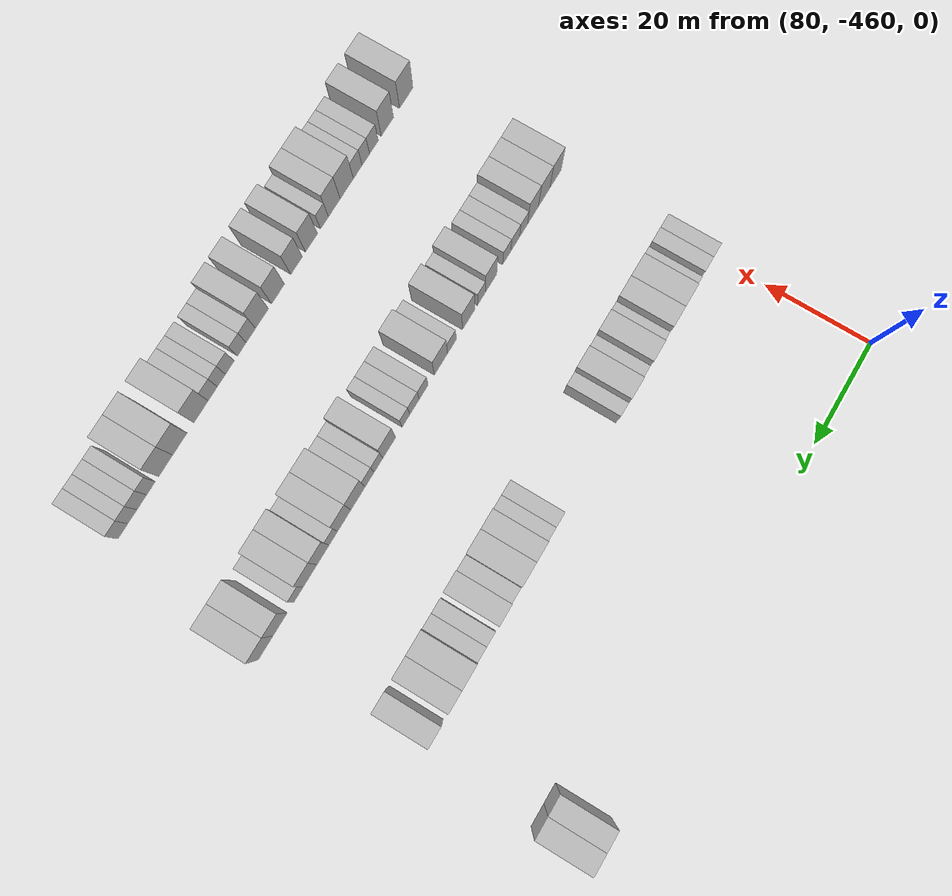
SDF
<sdf version="1.6">
 <world name="default">
  <model name="building_486">
   <static>1</static>
   <pose>85.0000 -369.9869 0 0.000000 0.000000 0.000000</pose>
   <link name="link">
    <pose>0 0 4.50 0 0 0</pose>
    <collision name="collision"><geometry><box><size>10.0000 3.6420 9.0000</size></box></geometry></collision>
    <visual name="visual">
     <cast_shadows>0</cast_shadows>
     <geometry><box><size>10.0000 3.6420 9.0000</size></box></geometry>
     <material>
      <script>
       <uri>model://HANNAS_wall/materials/scripts</uri>
       <uri>model://HANNAS_wall/materials/textures</uri>
       <name>vrc/HANNAS_wall</name>
      </script>
     </material>
    </visual>
   </link>
  </model>
  <model name="building_487">
   <static>1</static>
   <pose>85.0000 -366.1948 0 0.000000 0.000000 0.000000</pose>
   <link name="link">
    <pose>0 0 4.50 0 0 0</pose>
    <collision name="collision"><geometry><box><size>10.0000 3.9422 9.0000</size></box></geometry></collision>
    <visual name="visual">
     <cast_shadows>0</cast_shadows>
     <geometry><box><size>10.0000 3.9422 9.0000</size></box></geometry>
     <material>
      <script>
       <uri>model://HANNAS_wall/materials/scripts</uri>
       <uri>model://HANNAS_wall/materials/textures</uri>
       <name>vrc/HANNAS_wall</name>
      </script>
     </material>
    </visual>
   </link>
  </model>
  <model name="building_695">
   <static>1</static>
   <pose>115.0000 -458.6455 0 0.000000 0.000000 0.000000</pose>
   <link name="link">
    <pose>0 0 3.00 0 0 0</pose>
    <collision name="collision"><geometry><box><size>10.0000 2.7090 6.0000</size></box></geometry></collision>
    <visual name="visual">
     <cast_shadows>0</cast_shadows>
     <geometry><box><size>10.0000 2.7090 6.0000</size></box></geometry>
     <material>
      <script>
       <uri>model://HANNAS_wall/materials/scripts</uri>
       <uri>model://HANNAS_wall/materials/textures</uri>
       <name>vrc/HANNAS_wall</name>
      </script>
     </material>
    </visual>
   </link>
  </model>
  <model name="building_696">
   <static>1</static>
   <pose>115.0000 -455.8440 0 0.000000 0.000000 0.000000</pose>
   <link name="link">
    <pose>0 0 3.00 0 0 0</pose>
    <collision name="collision"><geometry><box><size>10.0000 2.8940 6.0000</size></box></geometry></collision>
    <visual name="visual">
     <cast_shadows>0</cast_shadows>
     <geometry><box><size>10.0000 2.8940 6.0000</size></box></geometry>
     <material>
      <script>
       <uri>model://HANNAS_wall/materials/scripts</uri>
       <uri>model://HANNAS_wall/materials/textures</uri>
       <name>vrc/HANNAS_wall</name>
      </script>
     </material>
    </visual>
   </link>
  </model>
  <model name="building_697">
   <static>1</static>
   <pose>115.0000 -452.1344 0 0.000000 0.000000 0.000000</pose>
   <link name="link">
    <pose>0 0 3.00 0 0 0</pose>
    <collision name="collision"><geometry><box><size>10.0000 2.5251 6.0000</size></box></geometry></collision>
    <visual name="visual">
     <cast_shadows>0</cast_shadows>
     <geometry><box><size>10.0000 2.5251 6.0000</size></box></geometry>
     <material>
      <script>
       <uri>model://HANNAS_wall/materials/scripts</uri>
       <uri>model://HANNAS_wall/materials/textures</uri>
       <name>vrc/HANNAS_wall</name>
      </script>
     </material>
    </visual>
   </link>
  </model>
  <model name="building_698">
   <static>1</static>
   <pose>115.0000 -448.6715 0 0.000000 0.000000 0.000000</pose>
   <link name="link">
    <pose>0 0 4.50 0 0 0</pose>
    <collision name="collision"><geometry><box><size>10.0000 4.4007 9.0000</size></box></geometry></collision>
    <visual name="visual">
     <cast_shadows>0</cast_shadows>
     <geometry><box><size>10.0000 4.4007 9.0000</size></box></geometry>
     <material>
      <script>
       <uri>model://HANNAS_wall/materials/scripts</uri>
       <uri>model://HANNAS_wall/materials/textures</uri>
       <name>vrc/HANNAS_wall</name>
      </script>
     </material>
    </visual>
   </link>
  </model>
  <model name="building_699">
   <static>1</static>
   <pose>115.0000 -444.4957 0 0.000000 0.000000 0.000000</pose>
   <link name="link">
    <pose>0 0 4.50 0 0 0</pose>
    <collision name="collision"><geometry><box><size>10.0000 3.9508 9.0000</size></box></geometry></collision>
    <visual name="visual">
     <cast_shadows>0</cast_shadows>
     <geometry><box><size>10.0000 3.9508 9.0000</size></box></geometry>
     <material>
      <script>
       <uri>model://HANNAS_wall/materials/scripts</uri>
       <uri>model://HANNAS_wall/materials/textures</uri>
       <name>vrc/HANNAS_wall</name>
      </script>
     </material>
    </visual>
   </link>
  </model>
  <model name="building_700">
   <static>1</static>
   <pose>115.0000 -441.2450 0 0.000000 0.000000 0.000000</pose>
   <link name="link">
    <pose>0 0 3.00 0 0 0</pose>
    <collision name="collision"><geometry><box><size>10.0000 2.5508 6.0000</size></box></geometry></collision>
    <visual name="visual">
     <cast_shadows>0</cast_shadows>
     <geometry><box><size>10.0000 2.5508 6.0000</size></box></geometry>
     <material>
      <script>
       <uri>model://HANNAS_wall/materials/scripts</uri>
       <uri>model://HANNAS_wall/materials/textures</uri>
       <name>vrc/HANNAS_wall</name>
      </script>
     </material>
    </visual>
   </link>
  </model>
  <model name="building_701">
   <static>1</static>
   <pose>115.0000 -437.9740 0 0.000000 0.000000 0.000000</pose>
   <link name="link">
    <pose>0 0 4.50 0 0 0</pose>
    <collision name="collision"><geometry><box><size>10.0000 3.9912 9.0000</size></box></geometry></collision>
    <visual name="visual">
     <cast_shadows>0</cast_shadows>
     <geometry><box><size>10.0000 3.9912 9.0000</size></box></geometry>
     <material>
      <script>
       <uri>model://HANNAS_wall/materials/scripts</uri>
       <uri>model://HANNAS_wall/materials/textures</uri>
       <name>vrc/HANNAS_wall</name>
      </script>
     </material>
    </visual>
   </link>
  </model>
  <model name="building_702">
   <static>1</static>
   <pose>115.0000 -434.4996 0 0.000000 0.000000 0.000000</pose>
   <link name="link">
    <pose>0 0 3.00 0 0 0</pose>
    <collision name="collision"><geometry><box><size>10.0000 2.9576 6.0000</size></box></geometry></collision>
    <visual name="visual">
     <cast_shadows>0</cast_shadows>
     <geometry><box><size>10.0000 2.9576 6.0000</size></box></geometry>
     <material>
      <script>
       <uri>model://HANNAS_wall/materials/scripts</uri>
       <uri>model://HANNAS_wall/materials/textures</uri>
       <name>vrc/HANNAS_wall</name>
      </script>
     </material>
    </visual>
   </link>
  </model>
  <model name="building_703">
   <static>1</static>
   <pose>115.0000 -430.9583 0 0.000000 0.000000 0.000000</pose>
   <link name="link">
    <pose>0 0 4.50 0 0 0</pose>
    <collision name="collision"><geometry><box><size>10.0000 4.1250 9.0000</size></box></geometry></collision>
    <visual name="visual">
     <cast_shadows>0</cast_shadows>
     <geometry><box><size>10.0000 4.1250 9.0000</size></box></geometry>
     <material>
      <script>
       <uri>model://HANNAS_wall/materials/scripts</uri>
       <uri>model://HANNAS_wall/materials/textures</uri>
       <name>vrc/HANNAS_wall</name>
      </script>
     </material>
    </visual>
   </link>
  </model>
  <model name="building_704">
   <static>1</static>
   <pose>115.0000 -427.5897 0 0.000000 0.000000 0.000000</pose>
   <link name="link">
    <pose>0 0 3.00 0 0 0</pose>
    <collision name="collision"><geometry><box><size>10.0000 2.6122 6.0000</size></box></geometry></collision>
    <visual name="visual">
     <cast_shadows>0</cast_shadows>
     <geometry><box><size>10.0000 2.6122 6.0000</size></box></geometry>
     <material>
      <script>
       <uri>model://HANNAS_wall/materials/scripts</uri>
       <uri>model://HANNAS_wall/materials/textures</uri>
       <name>vrc/HANNAS_wall</name>
      </script>
     </material>
    </visual>
   </link>
  </model>
  <model name="building_705">
   <static>1</static>
   <pose>115.0000 -407.0918 0 0.000000 0.000000 0.000000</pose>
   <link name="link">
    <pose>0 0 3.00 0 0 0</pose>
    <collision name="collision"><geometry><box><size>10.0000 2.7945 6.0000</size></box></geometry></collision>
    <visual name="visual">
     <cast_shadows>0</cast_shadows>
     <geometry><box><size>10.0000 2.7945 6.0000</size></box></geometry>
     <material>
      <script>
       <uri>model://HANNAS_wall/materials/scripts</uri>
       <uri>model://HANNAS_wall/materials/textures</uri>
       <name>vrc/HANNAS_wall</name>
      </script>
     </material>
    </visual>
   </link>
  </model>
  <model name="building_706">
   <static>1</static>
   <pose>115.0000 -404.3216 0 0.000000 0.000000 0.000000</pose>
   <link name="link">
    <pose>0 0 3.00 0 0 0</pose>
    <collision name="collision"><geometry><box><size>10.0000 2.7460 6.0000</size></box></geometry></collision>
    <visual name="visual">
     <cast_shadows>0</cast_shadows>
     <geometry><box><size>10.0000 2.7460 6.0000</size></box></geometry>
     <material>
      <script>
       <uri>model://HANNAS_wall/materials/scripts</uri>
       <uri>model://HANNAS_wall/materials/textures</uri>
       <name>vrc/HANNAS_wall</name>
      </script>
     </material>
    </visual>
   </link>
  </model>
  <model name="building_707">
   <static>1</static>
   <pose>115.0000 -401.1099 0 0.000000 0.000000 0.000000</pose>
   <link name="link">
    <pose>0 0 4.50 0 0 0</pose>
    <collision name="collision"><geometry><box><size>10.0000 3.6775 9.0000</size></box></geometry></collision>
    <visual name="visual">
     <cast_shadows>0</cast_shadows>
     <geometry><box><size>10.0000 3.6775 9.0000</size></box></geometry>
     <material>
      <script>
       <uri>model://HANNAS_wall/materials/scripts</uri>
       <uri>model://HANNAS_wall/materials/textures</uri>
       <name>vrc/HANNAS_wall</name>
      </script>
     </material>
    </visual>
   </link>
  </model>
  <model name="building_708">
   <static>1</static>
   <pose>115.0000 -397.0443 0 0.000000 0.000000 0.000000</pose>
   <link name="link">
    <pose>0 0 4.50 0 0 0</pose>
    <collision name="collision"><geometry><box><size>10.0000 4.4536 9.0000</size></box></geometry></collision>
    <visual name="visual">
     <cast_shadows>0</cast_shadows>
     <geometry><box><size>10.0000 4.4536 9.0000</size></box></geometry>
     <material>
      <script>
       <uri>model://HANNAS_wall/materials/scripts</uri>
       <uri>model://HANNAS_wall/materials/textures</uri>
       <name>vrc/HANNAS_wall</name>
      </script>
     </material>
    </visual>
   </link>
  </model>
  <model name="building_709">
   <static>1</static>
   <pose>115.0000 -393.3775 0 0.000000 0.000000 0.000000</pose>
   <link name="link">
    <pose>0 0 3.00 0 0 0</pose>
    <collision name="collision"><geometry><box><size>10.0000 2.8800 6.0000</size></box></geometry></collision>
    <visual name="visual">
     <cast_shadows>0</cast_shadows>
     <geometry><box><size>10.0000 2.8800 6.0000</size></box></geometry>
     <material>
      <script>
       <uri>model://HANNAS_wall/materials/scripts</uri>
       <uri>model://HANNAS_wall/materials/textures</uri>
       <name>vrc/HANNAS_wall</name>
      </script>
     </material>
    </visual>
   </link>
  </model>
  <model name="building_710">
   <static>1</static>
   <pose>115.0000 -389.9805 0 0.000000 0.000000 0.000000</pose>
   <link name="link">
    <pose>0 0 4.50 0 0 0</pose>
    <collision name="collision"><geometry><box><size>10.0000 3.9139 9.0000</size></box></geometry></collision>
    <visual name="visual">
     <cast_shadows>0</cast_shadows>
     <geometry><box><size>10.0000 3.9139 9.0000</size></box></geometry>
     <material>
      <script>
       <uri>model://HANNAS_wall/materials/scripts</uri>
       <uri>model://HANNAS_wall/materials/textures</uri>
       <name>vrc/HANNAS_wall</name>
      </script>
     </material>
    </visual>
   </link>
  </model>
  <model name="building_711">
   <static>1</static>
   <pose>115.0000 -385.6782 0 0.000000 0.000000 0.000000</pose>
   <link name="link">
    <pose>0 0 3.00 0 0 0</pose>
    <collision name="collision"><geometry><box><size>10.0000 2.6907 6.0000</size></box></geometry></collision>
    <visual name="visual">
     <cast_shadows>0</cast_shadows>
     <geometry><box><size>10.0000 2.6907 6.0000</size></box></geometry>
     <material>
      <script>
       <uri>model://HANNAS_wall/materials/scripts</uri>
       <uri>model://HANNAS_wall/materials/textures</uri>
       <name>vrc/HANNAS_wall</name>
      </script>
     </material>
    </visual>
   </link>
  </model>
  <model name="building_712">
   <static>1</static>
   <pose>115.0000 -382.9399 0 0.000000 0.000000 0.000000</pose>
   <link name="link">
    <pose>0 0 3.00 0 0 0</pose>
    <collision name="collision"><geometry><box><size>10.0000 2.7858 6.0000</size></box></geometry></collision>
    <visual name="visual">
     <cast_shadows>0</cast_shadows>
     <geometry><box><size>10.0000 2.7858 6.0000</size></box></geometry>
     <material>
      <script>
       <uri>model://HANNAS_wall/materials/scripts</uri>
       <uri>model://HANNAS_wall/materials/textures</uri>
       <name>vrc/HANNAS_wall</name>
      </script>
     </material>
    </visual>
   </link>
  </model>
  <model name="building_713">
   <static>1</static>
   <pose>115.0000 -379.3047 0 0.000000 0.000000 0.000000</pose>
   <link name="link">
    <pose>0 0 4.50 0 0 0</pose>
    <collision name="collision"><geometry><box><size>10.0000 4.4846 9.0000</size></box></geometry></collision>
    <visual name="visual">
     <cast_shadows>0</cast_shadows>
     <geometry><box><size>10.0000 4.4846 9.0000</size></box></geometry>
     <material>
      <script>
       <uri>model://HANNAS_wall/materials/scripts</uri>
       <uri>model://HANNAS_wall/materials/textures</uri>
       <name>vrc/HANNAS_wall</name>
      </script>
     </material>
    </visual>
   </link>
  </model>
  <model name="building_714">
   <static>1</static>
   <pose>115.0000 -375.0446 0 0.000000 0.000000 0.000000</pose>
   <link name="link">
    <pose>0 0 4.50 0 0 0</pose>
    <collision name="collision"><geometry><box><size>10.0000 4.0356 9.0000</size></box></geometry></collision>
    <visual name="visual">
     <cast_shadows>0</cast_shadows>
     <geometry><box><size>10.0000 4.0356 9.0000</size></box></geometry>
     <material>
      <script>
       <uri>model://HANNAS_wall/materials/scripts</uri>
       <uri>model://HANNAS_wall/materials/textures</uri>
       <name>vrc/HANNAS_wall</name>
      </script>
     </material>
    </visual>
   </link>
  </model>
  <model name="building_715">
   <static>1</static>
   <pose>115.0000 -369.1003 0 0.000000 0.000000 0.000000</pose>
   <link name="link">
    <pose>0 0 4.50 0 0 0</pose>
    <collision name="collision"><geometry><box><size>10.0000 3.8529 9.0000</size></box></geometry></collision>
    <visual name="visual">
     <cast_shadows>0</cast_shadows>
     <geometry><box><size>10.0000 3.8529 9.0000</size></box></geometry>
     <material>
      <script>
       <uri>model://HANNAS_wall/materials/scripts</uri>
       <uri>model://HANNAS_wall/materials/textures</uri>
       <name>vrc/HANNAS_wall</name>
      </script>
     </material>
    </visual>
   </link>
  </model>
  <model name="building_921">
   <static>1</static>
   <pose>145.0000 -458.0711 0 0.000000 0.000000 0.000000</pose>
   <link name="link">
    <pose>0 0 4.50 0 0 0</pose>
    <collision name="collision"><geometry><box><size>10.0000 3.8577 9.0000</size></box></geometry></collision>
    <visual name="visual">
     <cast_shadows>0</cast_shadows>
     <geometry><box><size>10.0000 3.8577 9.0000</size></box></geometry>
     <material>
      <script>
       <uri>model://HANNAS_wall/materials/scripts</uri>
       <uri>model://HANNAS_wall/materials/textures</uri>
       <name>vrc/HANNAS_wall</name>
      </script>
     </material>
    </visual>
   </link>
  </model>
  <model name="building_922">
   <static>1</static>
   <pose>145.0000 -454.1873 0 0.000000 0.000000 0.000000</pose>
   <link name="link">
    <pose>0 0 4.50 0 0 0</pose>
    <collision name="collision"><geometry><box><size>10.0000 3.9099 9.0000</size></box></geometry></collision>
    <visual name="visual">
     <cast_shadows>0</cast_shadows>
     <geometry><box><size>10.0000 3.9099 9.0000</size></box></geometry>
     <material>
      <script>
       <uri>model://HANNAS_wall/materials/scripts</uri>
       <uri>model://HANNAS_wall/materials/textures</uri>
       <name>vrc/HANNAS_wall</name>
      </script>
     </material>
    </visual>
   </link>
  </model>
  <model name="building_923">
   <static>1</static>
   <pose>145.0000 -450.3744 0 0.000000 0.000000 0.000000</pose>
   <link name="link">
    <pose>0 0 4.50 0 0 0</pose>
    <collision name="collision"><geometry><box><size>10.0000 3.7160 9.0000</size></box></geometry></collision>
    <visual name="visual">
     <cast_shadows>0</cast_shadows>
     <geometry><box><size>10.0000 3.7160 9.0000</size></box></geometry>
     <material>
      <script>
       <uri>model://HANNAS_wall/materials/scripts</uri>
       <uri>model://HANNAS_wall/materials/textures</uri>
       <name>vrc/HANNAS_wall</name>
      </script>
     </material>
    </visual>
   </link>
  </model>
  <model name="building_924">
   <static>1</static>
   <pose>145.0000 -447.1735 0 0.000000 0.000000 0.000000</pose>
   <link name="link">
    <pose>0 0 3.00 0 0 0</pose>
    <collision name="collision"><geometry><box><size>10.0000 2.6858 6.0000</size></box></geometry></collision>
    <visual name="visual">
     <cast_shadows>0</cast_shadows>
     <geometry><box><size>10.0000 2.6858 6.0000</size></box></geometry>
     <material>
      <script>
       <uri>model://HANNAS_wall/materials/scripts</uri>
       <uri>model://HANNAS_wall/materials/textures</uri>
       <name>vrc/HANNAS_wall</name>
      </script>
     </material>
    </visual>
   </link>
  </model>
  <model name="building_925">
   <static>1</static>
   <pose>145.0000 -444.3496 0 0.000000 0.000000 0.000000</pose>
   <link name="link">
    <pose>0 0 3.00 0 0 0</pose>
    <collision name="collision"><geometry><box><size>10.0000 2.9619 6.0000</size></box></geometry></collision>
    <visual name="visual">
     <cast_shadows>0</cast_shadows>
     <geometry><box><size>10.0000 2.9619 6.0000</size></box></geometry>
     <material>
      <script>
       <uri>model://HANNAS_wall/materials/scripts</uri>
       <uri>model://HANNAS_wall/materials/textures</uri>
       <name>vrc/HANNAS_wall</name>
      </script>
     </material>
    </visual>
   </link>
  </model>
  <model name="building_926">
   <static>1</static>
   <pose>145.0000 -441.5324 0 0.000000 0.000000 0.000000</pose>
   <link name="link">
    <pose>0 0 3.00 0 0 0</pose>
    <collision name="collision"><geometry><box><size>10.0000 2.6726 6.0000</size></box></geometry></collision>
    <visual name="visual">
     <cast_shadows>0</cast_shadows>
     <geometry><box><size>10.0000 2.6726 6.0000</size></box></geometry>
     <material>
      <script>
       <uri>model://HANNAS_wall/materials/scripts</uri>
       <uri>model://HANNAS_wall/materials/textures</uri>
       <name>vrc/HANNAS_wall</name>
      </script>
     </material>
    </visual>
   </link>
  </model>
  <model name="building_927">
   <static>1</static>
   <pose>145.0000 -436.2971 0 0.000000 0.000000 0.000000</pose>
   <link name="link">
    <pose>0 0 4.50 0 0 0</pose>
    <collision name="collision"><geometry><box><size>10.0000 3.7979 9.0000</size></box></geometry></collision>
    <visual name="visual">
     <cast_shadows>0</cast_shadows>
     <geometry><box><size>10.0000 3.7979 9.0000</size></box></geometry>
     <material>
      <script>
       <uri>model://HANNAS_wall/materials/scripts</uri>
       <uri>model://HANNAS_wall/materials/textures</uri>
       <name>vrc/HANNAS_wall</name>
      </script>
     </material>
    </visual>
   </link>
  </model>
  <model name="building_928">
   <static>1</static>
   <pose>145.0000 -433.1167 0 0.000000 0.000000 0.000000</pose>
   <link name="link">
    <pose>0 0 3.00 0 0 0</pose>
    <collision name="collision"><geometry><box><size>10.0000 2.5631 6.0000</size></box></geometry></collision>
    <visual name="visual">
     <cast_shadows>0</cast_shadows>
     <geometry><box><size>10.0000 2.5631 6.0000</size></box></geometry>
     <material>
      <script>
       <uri>model://HANNAS_wall/materials/scripts</uri>
       <uri>model://HANNAS_wall/materials/textures</uri>
       <name>vrc/HANNAS_wall</name>
      </script>
     </material>
    </visual>
   </link>
  </model>
  <model name="building_929">
   <static>1</static>
   <pose>145.0000 -428.8685 0 0.000000 0.000000 0.000000</pose>
   <link name="link">
    <pose>0 0 4.50 0 0 0</pose>
    <collision name="collision"><geometry><box><size>10.0000 3.9333 9.0000</size></box></geometry></collision>
    <visual name="visual">
     <cast_shadows>0</cast_shadows>
     <geometry><box><size>10.0000 3.9333 9.0000</size></box></geometry>
     <material>
      <script>
       <uri>model://HANNAS_wall/materials/scripts</uri>
       <uri>model://HANNAS_wall/materials/textures</uri>
       <name>vrc/HANNAS_wall</name>
      </script>
     </material>
    </visual>
   </link>
  </model>
  <model name="building_930">
   <static>1</static>
   <pose>145.0000 -423.4736 0 0.000000 0.000000 0.000000</pose>
   <link name="link">
    <pose>0 0 3.00 0 0 0</pose>
    <collision name="collision"><geometry><box><size>10.0000 2.8565 6.0000</size></box></geometry></collision>
    <visual name="visual">
     <cast_shadows>0</cast_shadows>
     <geometry><box><size>10.0000 2.8565 6.0000</size></box></geometry>
     <material>
      <script>
       <uri>model://HANNAS_wall/materials/scripts</uri>
       <uri>model://HANNAS_wall/materials/textures</uri>
       <name>vrc/HANNAS_wall</name>
      </script>
     </material>
    </visual>
   </link>
  </model>
  <model name="building_931">
   <static>1</static>
   <pose>145.0000 -419.9265 0 0.000000 0.000000 0.000000</pose>
   <link name="link">
    <pose>0 0 4.50 0 0 0</pose>
    <collision name="collision"><geometry><box><size>10.0000 4.2377 9.0000</size></box></geometry></collision>
    <visual name="visual">
     <cast_shadows>0</cast_shadows>
     <geometry><box><size>10.0000 4.2377 9.0000</size></box></geometry>
     <material>
      <script>
       <uri>model://HANNAS_wall/materials/scripts</uri>
       <uri>model://HANNAS_wall/materials/textures</uri>
       <name>vrc/HANNAS_wall</name>
      </script>
     </material>
    </visual>
   </link>
  </model>
  <model name="building_932">
   <static>1</static>
   <pose>145.0000 -414.3794 0 0.000000 0.000000 0.000000</pose>
   <link name="link">
    <pose>0 0 3.00 0 0 0</pose>
    <collision name="collision"><geometry><box><size>10.0000 2.8565 6.0000</size></box></geometry></collision>
    <visual name="visual">
     <cast_shadows>0</cast_shadows>
     <geometry><box><size>10.0000 2.8565 6.0000</size></box></geometry>
     <material>
      <script>
       <uri>model://HANNAS_wall/materials/scripts</uri>
       <uri>model://HANNAS_wall/materials/textures</uri>
       <name>vrc/HANNAS_wall</name>
      </script>
     </material>
    </visual>
   </link>
  </model>
  <model name="building_933">
   <static>1</static>
   <pose>145.0000 -411.4723 0 0.000000 0.000000 0.000000</pose>
   <link name="link">
    <pose>0 0 3.00 0 0 0</pose>
    <collision name="collision"><geometry><box><size>10.0000 2.9577 6.0000</size></box></geometry></collision>
    <visual name="visual">
     <cast_shadows>0</cast_shadows>
     <geometry><box><size>10.0000 2.9577 6.0000</size></box></geometry>
     <material>
      <script>
       <uri>model://HANNAS_wall/materials/scripts</uri>
       <uri>model://HANNAS_wall/materials/textures</uri>
       <name>vrc/HANNAS_wall</name>
      </script>
     </material>
    </visual>
   </link>
  </model>
  <model name="building_934">
   <static>1</static>
   <pose>145.0000 -408.7575 0 0.000000 0.000000 0.000000</pose>
   <link name="link">
    <pose>0 0 3.00 0 0 0</pose>
    <collision name="collision"><geometry><box><size>10.0000 2.4719 6.0000</size></box></geometry></collision>
    <visual name="visual">
     <cast_shadows>0</cast_shadows>
     <geometry><box><size>10.0000 2.4719 6.0000</size></box></geometry>
     <material>
      <script>
       <uri>model://HANNAS_wall/materials/scripts</uri>
       <uri>model://HANNAS_wall/materials/textures</uri>
       <name>vrc/HANNAS_wall</name>
      </script>
     </material>
    </visual>
   </link>
  </model>
  <model name="building_935">
   <static>1</static>
   <pose>145.0000 -403.5015 0 0.000000 0.000000 0.000000</pose>
   <link name="link">
    <pose>0 0 4.50 0 0 0</pose>
    <collision name="collision"><geometry><box><size>10.0000 4.0400 9.0000</size></box></geometry></collision>
    <visual name="visual">
     <cast_shadows>0</cast_shadows>
     <geometry><box><size>10.0000 4.0400 9.0000</size></box></geometry>
     <material>
      <script>
       <uri>model://HANNAS_wall/materials/scripts</uri>
       <uri>model://HANNAS_wall/materials/textures</uri>
       <name>vrc/HANNAS_wall</name>
      </script>
     </material>
    </visual>
   </link>
  </model>
  <model name="building_936">
   <static>1</static>
   <pose>145.0000 -400.1220 0 0.000000 0.000000 0.000000</pose>
   <link name="link">
    <pose>0 0 3.00 0 0 0</pose>
    <collision name="collision"><geometry><box><size>10.0000 2.7190 6.0000</size></box></geometry></collision>
    <visual name="visual">
     <cast_shadows>0</cast_shadows>
     <geometry><box><size>10.0000 2.7190 6.0000</size></box></geometry>
     <material>
      <script>
       <uri>model://HANNAS_wall/materials/scripts</uri>
       <uri>model://HANNAS_wall/materials/textures</uri>
       <name>vrc/HANNAS_wall</name>
      </script>
     </material>
    </visual>
   </link>
  </model>
  <model name="building_937">
   <static>1</static>
   <pose>145.0000 -397.3797 0 0.000000 0.000000 0.000000</pose>
   <link name="link">
    <pose>0 0 3.00 0 0 0</pose>
    <collision name="collision"><geometry><box><size>10.0000 2.7655 6.0000</size></box></geometry></collision>
    <visual name="visual">
     <cast_shadows>0</cast_shadows>
     <geometry><box><size>10.0000 2.7655 6.0000</size></box></geometry>
     <material>
      <script>
       <uri>model://HANNAS_wall/materials/scripts</uri>
       <uri>model://HANNAS_wall/materials/textures</uri>
       <name>vrc/HANNAS_wall</name>
      </script>
     </material>
    </visual>
   </link>
  </model>
  <model name="building_938">
   <static>1</static>
   <pose>145.0000 -393.7938 0 0.000000 0.000000 0.000000</pose>
   <link name="link">
    <pose>0 0 4.50 0 0 0</pose>
    <collision name="collision"><geometry><box><size>10.0000 4.4063 9.0000</size></box></geometry></collision>
    <visual name="visual">
     <cast_shadows>0</cast_shadows>
     <geometry><box><size>10.0000 4.4063 9.0000</size></box></geometry>
     <material>
      <script>
       <uri>model://HANNAS_wall/materials/scripts</uri>
       <uri>model://HANNAS_wall/materials/textures</uri>
       <name>vrc/HANNAS_wall</name>
      </script>
     </material>
    </visual>
   </link>
  </model>
  <model name="building_939">
   <static>1</static>
   <pose>145.0000 -389.5567 0 0.000000 0.000000 0.000000</pose>
   <link name="link">
    <pose>0 0 4.50 0 0 0</pose>
    <collision name="collision"><geometry><box><size>10.0000 4.0679 9.0000</size></box></geometry></collision>
    <visual name="visual">
     <cast_shadows>0</cast_shadows>
     <geometry><box><size>10.0000 4.0679 9.0000</size></box></geometry>
     <material>
      <script>
       <uri>model://HANNAS_wall/materials/scripts</uri>
       <uri>model://HANNAS_wall/materials/textures</uri>
       <name>vrc/HANNAS_wall</name>
      </script>
     </material>
    </visual>
   </link>
  </model>
  <model name="building_940">
   <static>1</static>
   <pose>145.0000 -386.2279 0 0.000000 0.000000 0.000000</pose>
   <link name="link">
    <pose>0 0 3.00 0 0 0</pose>
    <collision name="collision"><geometry><box><size>10.0000 2.5897 6.0000</size></box></geometry></collision>
    <visual name="visual">
     <cast_shadows>0</cast_shadows>
     <geometry><box><size>10.0000 2.5897 6.0000</size></box></geometry>
     <material>
      <script>
       <uri>model://HANNAS_wall/materials/scripts</uri>
       <uri>model://HANNAS_wall/materials/textures</uri>
       <name>vrc/HANNAS_wall</name>
      </script>
     </material>
    </visual>
   </link>
  </model>
  <model name="building_941">
   <static>1</static>
   <pose>145.0000 -383.0917 0 0.000000 0.000000 0.000000</pose>
   <link name="link">
    <pose>0 0 4.50 0 0 0</pose>
    <collision name="collision"><geometry><box><size>10.0000 3.6825 9.0000</size></box></geometry></collision>
    <visual name="visual">
     <cast_shadows>0</cast_shadows>
     <geometry><box><size>10.0000 3.6825 9.0000</size></box></geometry>
     <material>
      <script>
       <uri>model://HANNAS_wall/materials/scripts</uri>
       <uri>model://HANNAS_wall/materials/textures</uri>
       <name>vrc/HANNAS_wall</name>
      </script>
     </material>
    </visual>
   </link>
  </model>
  <model name="building_942">
   <static>1</static>
   <pose>145.0000 -379.1505 0 0.000000 0.000000 0.000000</pose>
   <link name="link">
    <pose>0 0 4.50 0 0 0</pose>
    <collision name="collision"><geometry><box><size>10.0000 4.2000 9.0000</size></box></geometry></collision>
    <visual name="visual">
     <cast_shadows>0</cast_shadows>
     <geometry><box><size>10.0000 4.2000 9.0000</size></box></geometry>
     <material>
      <script>
       <uri>model://HANNAS_wall/materials/scripts</uri>
       <uri>model://HANNAS_wall/materials/textures</uri>
       <name>vrc/HANNAS_wall</name>
      </script>
     </material>
    </visual>
   </link>
  </model>
  <model name="building_943">
   <static>1</static>
   <pose>145.0000 -375.6865 0 0.000000 0.000000 0.000000</pose>
   <link name="link">
    <pose>0 0 3.00 0 0 0</pose>
    <collision name="collision"><geometry><box><size>10.0000 2.7280 6.0000</size></box></geometry></collision>
    <visual name="visual">
     <cast_shadows>0</cast_shadows>
     <geometry><box><size>10.0000 2.7280 6.0000</size></box></geometry>
     <material>
      <script>
       <uri>model://HANNAS_wall/materials/scripts</uri>
       <uri>model://HANNAS_wall/materials/textures</uri>
       <name>vrc/HANNAS_wall</name>
      </script>
     </material>
    </visual>
   </link>
  </model>
  <model name="building_944">
   <static>1</static>
   <pose>145.0000 -370.2351 0 0.000000 0.000000 0.000000</pose>
   <link name="link">
    <pose>0 0 4.50 0 0 0</pose>
    <collision name="collision"><geometry><box><size>10.0000 4.1746 9.0000</size></box></geometry></collision>
    <visual name="visual">
     <cast_shadows>0</cast_shadows>
     <geometry><box><size>10.0000 4.1746 9.0000</size></box></geometry>
     <material>
      <script>
       <uri>model://HANNAS_wall/materials/scripts</uri>
       <uri>model://HANNAS_wall/materials/textures</uri>
       <name>vrc/HANNAS_wall</name>
      </script>
     </material>
    </visual>
   </link>
  </model>
  <model name="building_945">
   <static>1</static>
   <pose>145.0000 -365.9425 0 0.000000 0.000000 0.000000</pose>
   <link name="link">
    <pose>0 0 4.50 0 0 0</pose>
    <collision name="collision"><geometry><box><size>10.0000 4.4106 9.0000</size></box></geometry></collision>
    <visual name="visual">
     <cast_shadows>0</cast_shadows>
     <geometry><box><size>10.0000 4.4106 9.0000</size></box></geometry>
     <material>
      <script>
       <uri>model://HANNAS_wall/materials/scripts</uri>
       <uri>model://HANNAS_wall/materials/textures</uri>
       <name>vrc/HANNAS_wall</name>
      </script>
     </material>
    </visual>
   </link>
  </model>
  <model name="building_1148">
   <static>1</static>
   <pose>175.0000 -457.7567 0 0.000000 0.000000 0.000000</pose>
   <link name="link">
    <pose>0 0 4.50 0 0 0</pose>
    <collision name="collision"><geometry><box><size>10.0000 4.4867 9.0000</size></box></geometry></collision>
    <visual name="visual">
     <cast_shadows>0</cast_shadows>
     <geometry><box><size>10.0000 4.4867 9.0000</size></box></geometry>
     <material>
      <script>
       <uri>model://HANNAS_wall/materials/scripts</uri>
       <uri>model://HANNAS_wall/materials/textures</uri>
       <name>vrc/HANNAS_wall</name>
      </script>
     </material>
    </visual>
   </link>
  </model>
  <model name="building_1149">
   <static>1</static>
   <pose>175.0000 -451.4901 0 0.000000 0.000000 0.000000</pose>
   <link name="link">
    <pose>0 0 4.50 0 0 0</pose>
    <collision name="collision"><geometry><box><size>10.0000 4.0465 9.0000</size></box></geometry></collision>
    <visual name="visual">
     <cast_shadows>0</cast_shadows>
     <geometry><box><size>10.0000 4.0465 9.0000</size></box></geometry>
     <material>
      <script>
       <uri>model://HANNAS_wall/materials/scripts</uri>
       <uri>model://HANNAS_wall/materials/textures</uri>
       <name>vrc/HANNAS_wall</name>
      </script>
     </material>
    </visual>
   </link>
  </model>
  <model name="building_1150">
   <static>1</static>
   <pose>175.0000 -447.0472 0 0.000000 0.000000 0.000000</pose>
   <link name="link">
    <pose>0 0 3.00 0 0 0</pose>
    <collision name="collision"><geometry><box><size>10.0000 2.8392 6.0000</size></box></geometry></collision>
    <visual name="visual">
     <cast_shadows>0</cast_shadows>
     <geometry><box><size>10.0000 2.8392 6.0000</size></box></geometry>
     <material>
      <script>
       <uri>model://HANNAS_wall/materials/scripts</uri>
       <uri>model://HANNAS_wall/materials/textures</uri>
       <name>vrc/HANNAS_wall</name>
      </script>
     </material>
    </visual>
   </link>
  </model>
  <model name="building_1151">
   <static>1</static>
   <pose>175.0000 -444.3907 0 0.000000 0.000000 0.000000</pose>
   <link name="link">
    <pose>0 0 3.00 0 0 0</pose>
    <collision name="collision"><geometry><box><size>10.0000 2.4738 6.0000</size></box></geometry></collision>
    <visual name="visual">
     <cast_shadows>0</cast_shadows>
     <geometry><box><size>10.0000 2.4738 6.0000</size></box></geometry>
     <material>
      <script>
       <uri>model://HANNAS_wall/materials/scripts</uri>
       <uri>model://HANNAS_wall/materials/textures</uri>
       <name>vrc/HANNAS_wall</name>
      </script>
     </material>
    </visual>
   </link>
  </model>
  <model name="building_1152">
   <static>1</static>
   <pose>175.0000 -441.7448 0 0.000000 0.000000 0.000000</pose>
   <link name="link">
    <pose>0 0 3.00 0 0 0</pose>
    <collision name="collision"><geometry><box><size>10.0000 2.8180 6.0000</size></box></geometry></collision>
    <visual name="visual">
     <cast_shadows>0</cast_shadows>
     <geometry><box><size>10.0000 2.8180 6.0000</size></box></geometry>
     <material>
      <script>
       <uri>model://HANNAS_wall/materials/scripts</uri>
       <uri>model://HANNAS_wall/materials/textures</uri>
       <name>vrc/HANNAS_wall</name>
      </script>
     </material>
    </visual>
   </link>
  </model>
  <model name="building_1153">
   <static>1</static>
   <pose>175.0000 -438.1863 0 0.000000 0.000000 0.000000</pose>
   <link name="link">
    <pose>0 0 4.50 0 0 0</pose>
    <collision name="collision"><geometry><box><size>10.0000 4.2989 9.0000</size></box></geometry></collision>
    <visual name="visual">
     <cast_shadows>0</cast_shadows>
     <geometry><box><size>10.0000 4.2989 9.0000</size></box></geometry>
     <material>
      <script>
       <uri>model://HANNAS_wall/materials/scripts</uri>
       <uri>model://HANNAS_wall/materials/textures</uri>
       <name>vrc/HANNAS_wall</name>
      </script>
     </material>
    </visual>
   </link>
  </model>
  <model name="building_1154">
   <static>1</static>
   <pose>175.0000 -434.1472 0 0.000000 0.000000 0.000000</pose>
   <link name="link">
    <pose>0 0 4.50 0 0 0</pose>
    <collision name="collision"><geometry><box><size>10.0000 3.7794 9.0000</size></box></geometry></collision>
    <visual name="visual">
     <cast_shadows>0</cast_shadows>
     <geometry><box><size>10.0000 3.7794 9.0000</size></box></geometry>
     <material>
      <script>
       <uri>model://HANNAS_wall/materials/scripts</uri>
       <uri>model://HANNAS_wall/materials/textures</uri>
       <name>vrc/HANNAS_wall</name>
      </script>
     </material>
    </visual>
   </link>
  </model>
  <model name="building_1155">
   <static>1</static>
   <pose>175.0000 -430.9919 0 0.000000 0.000000 0.000000</pose>
   <link name="link">
    <pose>0 0 3.00 0 0 0</pose>
    <collision name="collision"><geometry><box><size>10.0000 2.5311 6.0000</size></box></geometry></collision>
    <visual name="visual">
     <cast_shadows>0</cast_shadows>
     <geometry><box><size>10.0000 2.5311 6.0000</size></box></geometry>
     <material>
      <script>
       <uri>model://HANNAS_wall/materials/scripts</uri>
       <uri>model://HANNAS_wall/materials/textures</uri>
       <name>vrc/HANNAS_wall</name>
      </script>
     </material>
    </visual>
   </link>
  </model>
  <model name="building_1156">
   <static>1</static>
   <pose>175.0000 -426.8205 0 0.000000 0.000000 0.000000</pose>
   <link name="link">
    <pose>0 0 4.50 0 0 0</pose>
    <collision name="collision"><geometry><box><size>10.0000 3.8117 9.0000</size></box></geometry></collision>
    <visual name="visual">
     <cast_shadows>0</cast_shadows>
     <geometry><box><size>10.0000 3.8117 9.0000</size></box></geometry>
     <material>
      <script>
       <uri>model://HANNAS_wall/materials/scripts</uri>
       <uri>model://HANNAS_wall/materials/textures</uri>
       <name>vrc/HANNAS_wall</name>
      </script>
     </material>
    </visual>
   </link>
  </model>
  <model name="building_1157">
   <static>1</static>
   <pose>175.0000 -422.0965 0 0.000000 0.000000 0.000000</pose>
   <link name="link">
    <pose>0 0 4.50 0 0 0</pose>
    <collision name="collision"><geometry><box><size>10.0000 3.6364 9.0000</size></box></geometry></collision>
    <visual name="visual">
     <cast_shadows>0</cast_shadows>
     <geometry><box><size>10.0000 3.6364 9.0000</size></box></geometry>
     <material>
      <script>
       <uri>model://HANNAS_wall/materials/scripts</uri>
       <uri>model://HANNAS_wall/materials/textures</uri>
       <name>vrc/HANNAS_wall</name>
      </script>
     </material>
    </visual>
   </link>
  </model>
  <model name="building_1158">
   <static>1</static>
   <pose>175.0000 -416.2697 0 0.000000 0.000000 0.000000</pose>
   <link name="link">
    <pose>0 0 4.50 0 0 0</pose>
    <collision name="collision"><geometry><box><size>10.0000 4.0170 9.0000</size></box></geometry></collision>
    <visual name="visual">
     <cast_shadows>0</cast_shadows>
     <geometry><box><size>10.0000 4.0170 9.0000</size></box></geometry>
     <material>
      <script>
       <uri>model://HANNAS_wall/materials/scripts</uri>
       <uri>model://HANNAS_wall/materials/textures</uri>
       <name>vrc/HANNAS_wall</name>
      </script>
     </material>
    </visual>
   </link>
  </model>
  <model name="building_1159">
   <static>1</static>
   <pose>175.0000 -411.2634 0 0.000000 0.000000 0.000000</pose>
   <link name="link">
    <pose>0 0 4.50 0 0 0</pose>
    <collision name="collision"><geometry><box><size>10.0000 3.9956 9.0000</size></box></geometry></collision>
    <visual name="visual">
     <cast_shadows>0</cast_shadows>
     <geometry><box><size>10.0000 3.9956 9.0000</size></box></geometry>
     <material>
      <script>
       <uri>model://HANNAS_wall/materials/scripts</uri>
       <uri>model://HANNAS_wall/materials/textures</uri>
       <name>vrc/HANNAS_wall</name>
      </script>
     </material>
    </visual>
   </link>
  </model>
  <model name="building_1160">
   <static>1</static>
   <pose>175.0000 -407.8185 0 0.000000 0.000000 0.000000</pose>
   <link name="link">
    <pose>0 0 3.00 0 0 0</pose>
    <collision name="collision"><geometry><box><size>10.0000 2.8944 6.0000</size></box></geometry></collision>
    <visual name="visual">
     <cast_shadows>0</cast_shadows>
     <geometry><box><size>10.0000 2.8944 6.0000</size></box></geometry>
     <material>
      <script>
       <uri>model://HANNAS_wall/materials/scripts</uri>
       <uri>model://HANNAS_wall/materials/textures</uri>
       <name>vrc/HANNAS_wall</name>
      </script>
     </material>
    </visual>
   </link>
  </model>
  <model name="building_1161">
   <static>1</static>
   <pose>175.0000 -405.0359 0 0.000000 0.000000 0.000000</pose>
   <link name="link">
    <pose>0 0 3.00 0 0 0</pose>
    <collision name="collision"><geometry><box><size>10.0000 2.6708 6.0000</size></box></geometry></collision>
    <visual name="visual">
     <cast_shadows>0</cast_shadows>
     <geometry><box><size>10.0000 2.6708 6.0000</size></box></geometry>
     <material>
      <script>
       <uri>model://HANNAS_wall/materials/scripts</uri>
       <uri>model://HANNAS_wall/materials/textures</uri>
       <name>vrc/HANNAS_wall</name>
      </script>
     </material>
    </visual>
   </link>
  </model>
  <model name="building_1162">
   <static>1</static>
   <pose>175.0000 -401.3592 0 0.000000 0.000000 0.000000</pose>
   <link name="link">
    <pose>0 0 3.00 0 0 0</pose>
    <collision name="collision"><geometry><box><size>10.0000 2.6826 6.0000</size></box></geometry></collision>
    <visual name="visual">
     <cast_shadows>0</cast_shadows>
     <geometry><box><size>10.0000 2.6826 6.0000</size></box></geometry>
     <material>
      <script>
       <uri>model://HANNAS_wall/materials/scripts</uri>
       <uri>model://HANNAS_wall/materials/textures</uri>
       <name>vrc/HANNAS_wall</name>
      </script>
     </material>
    </visual>
   </link>
  </model>
  <model name="building_1163">
   <static>1</static>
   <pose>175.0000 -398.7898 0 0.000000 0.000000 0.000000</pose>
   <link name="link">
    <pose>0 0 3.00 0 0 0</pose>
    <collision name="collision"><geometry><box><size>10.0000 2.4561 6.0000</size></box></geometry></collision>
    <visual name="visual">
     <cast_shadows>0</cast_shadows>
     <geometry><box><size>10.0000 2.4561 6.0000</size></box></geometry>
     <material>
      <script>
       <uri>model://HANNAS_wall/materials/scripts</uri>
       <uri>model://HANNAS_wall/materials/textures</uri>
       <name>vrc/HANNAS_wall</name>
      </script>
     </material>
    </visual>
   </link>
  </model>
  <model name="building_1164">
   <static>1</static>
   <pose>175.0000 -396.1715 0 0.000000 0.000000 0.000000</pose>
   <link name="link">
    <pose>0 0 3.00 0 0 0</pose>
    <collision name="collision"><geometry><box><size>10.0000 2.7806 6.0000</size></box></geometry></collision>
    <visual name="visual">
     <cast_shadows>0</cast_shadows>
     <geometry><box><size>10.0000 2.7806 6.0000</size></box></geometry>
     <material>
      <script>
       <uri>model://HANNAS_wall/materials/scripts</uri>
       <uri>model://HANNAS_wall/materials/textures</uri>
       <name>vrc/HANNAS_wall</name>
      </script>
     </material>
    </visual>
   </link>
  </model>
  <model name="building_1165">
   <static>1</static>
   <pose>175.0000 -392.6309 0 0.000000 0.000000 0.000000</pose>
   <link name="link">
    <pose>0 0 4.50 0 0 0</pose>
    <collision name="collision"><geometry><box><size>10.0000 4.3006 9.0000</size></box></geometry></collision>
    <visual name="visual">
     <cast_shadows>0</cast_shadows>
     <geometry><box><size>10.0000 4.3006 9.0000</size></box></geometry>
     <material>
      <script>
       <uri>model://HANNAS_wall/materials/scripts</uri>
       <uri>model://HANNAS_wall/materials/textures</uri>
       <name>vrc/HANNAS_wall</name>
      </script>
     </material>
    </visual>
   </link>
  </model>
  <model name="building_1166">
   <static>1</static>
   <pose>175.0000 -386.3378 0 0.000000 0.000000 0.000000</pose>
   <link name="link">
    <pose>0 0 4.50 0 0 0</pose>
    <collision name="collision"><geometry><box><size>10.0000 4.2855 9.0000</size></box></geometry></collision>
    <visual name="visual">
     <cast_shadows>0</cast_shadows>
     <geometry><box><size>10.0000 4.2855 9.0000</size></box></geometry>
     <material>
      <script>
       <uri>model://HANNAS_wall/materials/scripts</uri>
       <uri>model://HANNAS_wall/materials/textures</uri>
       <name>vrc/HANNAS_wall</name>
      </script>
     </material>
    </visual>
   </link>
  </model>
  <model name="building_1167">
   <static>1</static>
   <pose>175.0000 -382.1160 0 0.000000 0.000000 0.000000</pose>
   <link name="link">
    <pose>0 0 4.50 0 0 0</pose>
    <collision name="collision"><geometry><box><size>10.0000 4.1582 9.0000</size></box></geometry></collision>
    <visual name="visual">
     <cast_shadows>0</cast_shadows>
     <geometry><box><size>10.0000 4.1582 9.0000</size></box></geometry>
     <material>
      <script>
       <uri>model://HANNAS_wall/materials/scripts</uri>
       <uri>model://HANNAS_wall/materials/textures</uri>
       <name>vrc/HANNAS_wall</name>
      </script>
     </material>
    </visual>
   </link>
  </model>
  <model name="building_1168">
   <static>1</static>
   <pose>175.0000 -377.7898 0 0.000000 0.000000 0.000000</pose>
   <link name="link">
    <pose>0 0 3.00 0 0 0</pose>
    <collision name="collision"><geometry><box><size>10.0000 2.4942 6.0000</size></box></geometry></collision>
    <visual name="visual">
     <cast_shadows>0</cast_shadows>
     <geometry><box><size>10.0000 2.4942 6.0000</size></box></geometry>
     <material>
      <script>
       <uri>model://HANNAS_wall/materials/scripts</uri>
       <uri>model://HANNAS_wall/materials/textures</uri>
       <name>vrc/HANNAS_wall</name>
      </script>
     </material>
    </visual>
   </link>
  </model>
  <model name="building_1169">
   <static>1</static>
   <pose>175.0000 -375.1222 0 0.000000 0.000000 0.000000</pose>
   <link name="link">
    <pose>0 0 3.00 0 0 0</pose>
    <collision name="collision"><geometry><box><size>10.0000 2.8410 6.0000</size></box></geometry></collision>
    <visual name="visual">
     <cast_shadows>0</cast_shadows>
     <geometry><box><size>10.0000 2.8410 6.0000</size></box></geometry>
     <material>
      <script>
       <uri>model://HANNAS_wall/materials/scripts</uri>
       <uri>model://HANNAS_wall/materials/textures</uri>
       <name>vrc/HANNAS_wall</name>
      </script>
     </material>
    </visual>
   </link>
  </model>
  <model name="building_1170">
   <static>1</static>
   <pose>175.0000 -372.3841 0 0.000000 0.000000 0.000000</pose>
   <link name="link">
    <pose>0 0 3.00 0 0 0</pose>
    <collision name="collision"><geometry><box><size>10.0000 2.6353 6.0000</size></box></geometry></collision>
    <visual name="visual">
     <cast_shadows>0</cast_shadows>
     <geometry><box><size>10.0000 2.6353 6.0000</size></box></geometry>
     <material>
      <script>
       <uri>model://HANNAS_wall/materials/scripts</uri>
       <uri>model://HANNAS_wall/materials/textures</uri>
       <name>vrc/HANNAS_wall</name>
      </script>
     </material>
    </visual>
   </link>
  </model>
  <model name="building_1171">
   <static>1</static>
   <pose>175.0000 -369.6333 0 0.000000 0.000000 0.000000</pose>
   <link name="link">
    <pose>0 0 3.00 0 0 0</pose>
    <collision name="collision"><geometry><box><size>10.0000 2.8663 6.0000</size></box></geometry></collision>
    <visual name="visual">
     <cast_shadows>0</cast_shadows>
     <geometry><box><size>10.0000 2.8663 6.0000</size></box></geometry>
     <material>
      <script>
       <uri>model://HANNAS_wall/materials/scripts</uri>
       <uri>model://HANNAS_wall/materials/textures</uri>
       <name>vrc/HANNAS_wall</name>
      </script>
     </material>
    </visual>
   </link>
  </model>
 </world>
</sdf>
